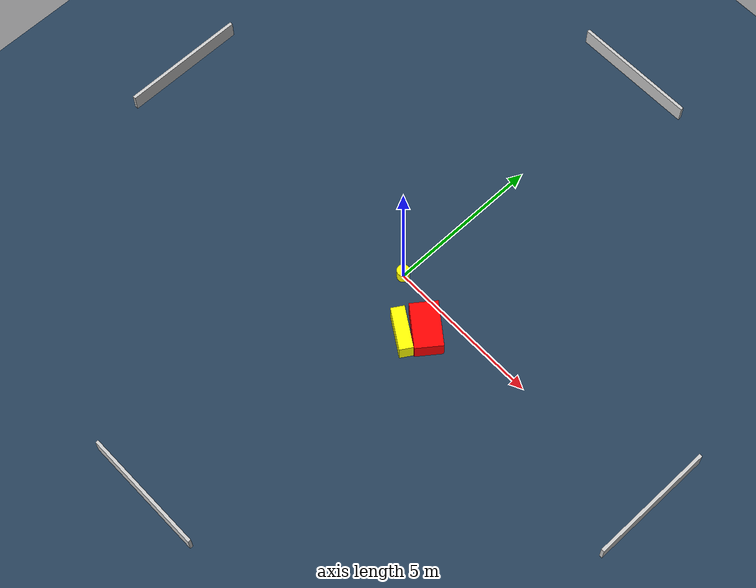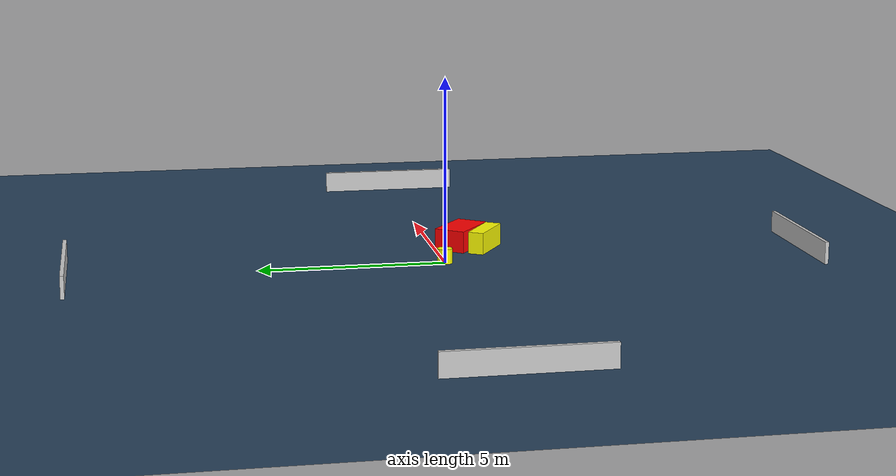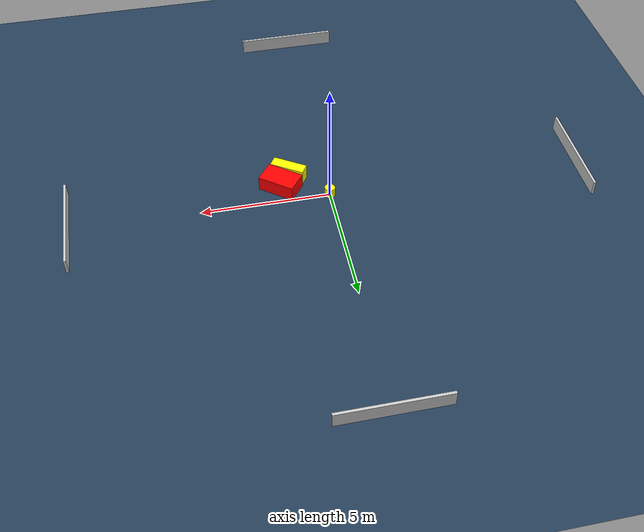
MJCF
<?xml version="1.0" ?>
<mujoco model="generated_environment">
  <option timestep="0.01" integrator="RK4" cone="elliptic"/>
  <default>
    <geom density="1"/>
  </default>
  <asset>
    <texture builtin="gradient" height="3072" name="skybox" rgb1="0.3 0.5 0.7" rgb2="0 0 0" type="skybox" width="512"/>
    <texture builtin="checker" height="300" name="groundplane" rgb1="0.2 0.3 0.4" rgb2="0.1 0.2 0.3" type="2d" width="300"/>
    <material name="groundplane" reflectance="0.2" texrepeat="5 5" texture="groundplane"/>
  </asset>
  <worldbody>
    <light dir="0 0 -1" directional="true" pos="0 0 1.5"/>
    <geom condim="3" friction="0.5 0.005 0.001" material="groundplane" name="floor" pos="0 0 0" size="0 0 0.05" type="plane"/>
    <body name="walls">
      <geom name="wall_1" condim="4" pos="-10.0 0.0 0.3" rgba="0.800000011920929 0.800000011920929 0.800000011920929 1.0" size="0.05 2.0 0.3" type="box"/>
      <geom name="wall_2" condim="4" pos="10.0 0.0 0.3" rgba="0.800000011920929 0.800000011920929 0.800000011920929 1.0" size="0.05 2.0 0.3" type="box"/>
      <geom name="wall_3" condim="4" pos="0.0 -10.0 0.3" rgba="0.800000011920929 0.800000011920929 0.800000011920929 1.0" size="2.0 0.05 0.3" type="box"/>
      <geom name="wall_4" condim="4" pos="0.0 10.0 0.3" rgba="0.800000011920929 0.800000011920929 0.800000011920929 1.0" size="2.0 0.05 0.3" type="box"/>
    </body>
    <body name="robot">
      <joint name="joint_x" type="slide" pos="0 0 0" axis="1 0 0"/>
      <joint name="joint_y" type="slide" pos="0 0 0" axis="0 1 0"/>
      <geom name="robot" type="cylinder" pos="0.0 0.0 0.2" size="0.2 0.2 0.0" mass="5.0" friction="1.0 0.005 0.0001" condim="4" rgba="1.0 1.0 0.0 1.0"/>
    </body>
    <body name="obstacle_1_movable">
      <geom name="obstacle_1_movable" condim="4" pos="1.3806283368147856 -1.3700663147773893 0.3" euler="0 0 327.4622069850589" friction="0.0 0.005 0.001" rgba="1.0 1.0 0.0 1.0" size="0.6812883692799903 0.21660926592688834 0.3" type="box" mass="0.1"/>
      <joint type="free"/>
    </body>
    <body name="obstacle_2_static">
      <geom name="obstacle_2_static" condim="4" pos="1.7972903568030891 -0.7830648835097903 0.3" euler="0 0 52.58060723557252" friction="0.0 0.005 0.001" rgba="1.0 0.0 0.0 1.0" size="0.4391453591545793 0.7235319621616139 0.3" type="box"/>
    </body>
  </worldbody>
  <actuator>
    <motor name="actuator_x" joint="joint_x" gear="1" ctrlrange="-1 1"/>
    <motor name="actuator_y" joint="joint_y" gear="1" ctrlrange="-1 1"/>
  </actuator>
</mujoco>
